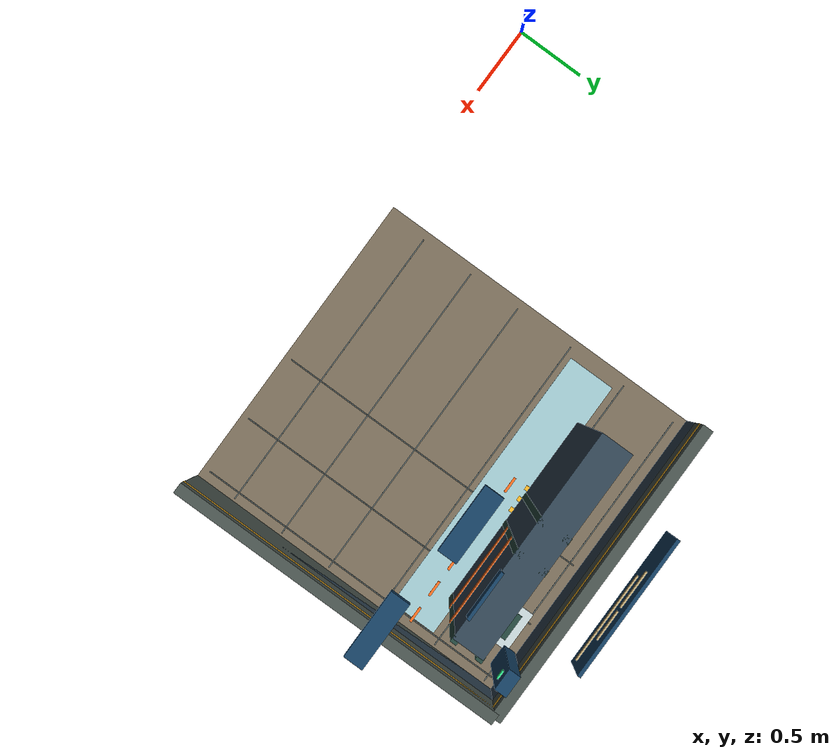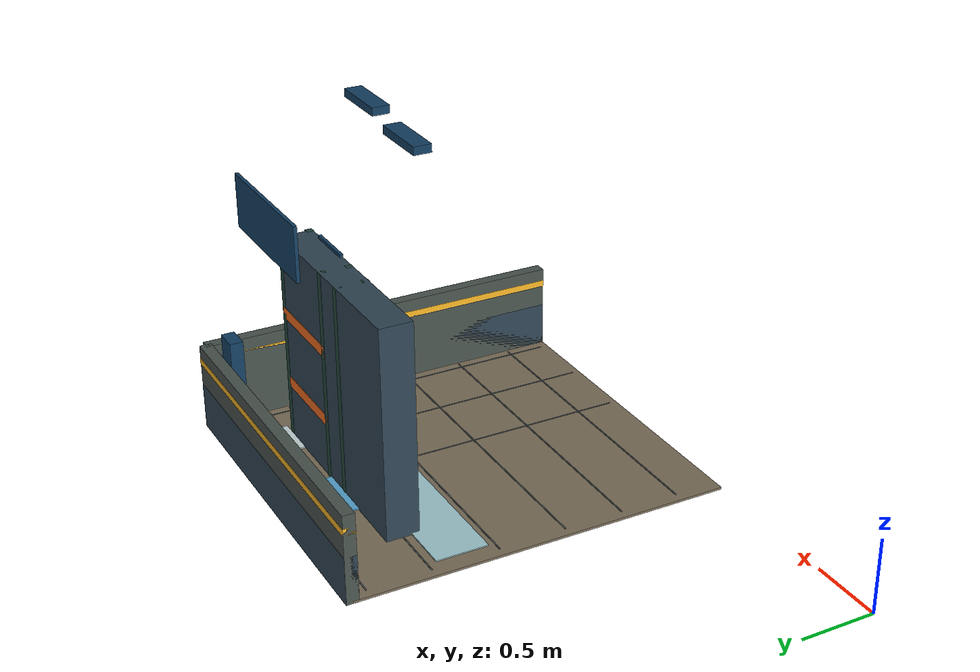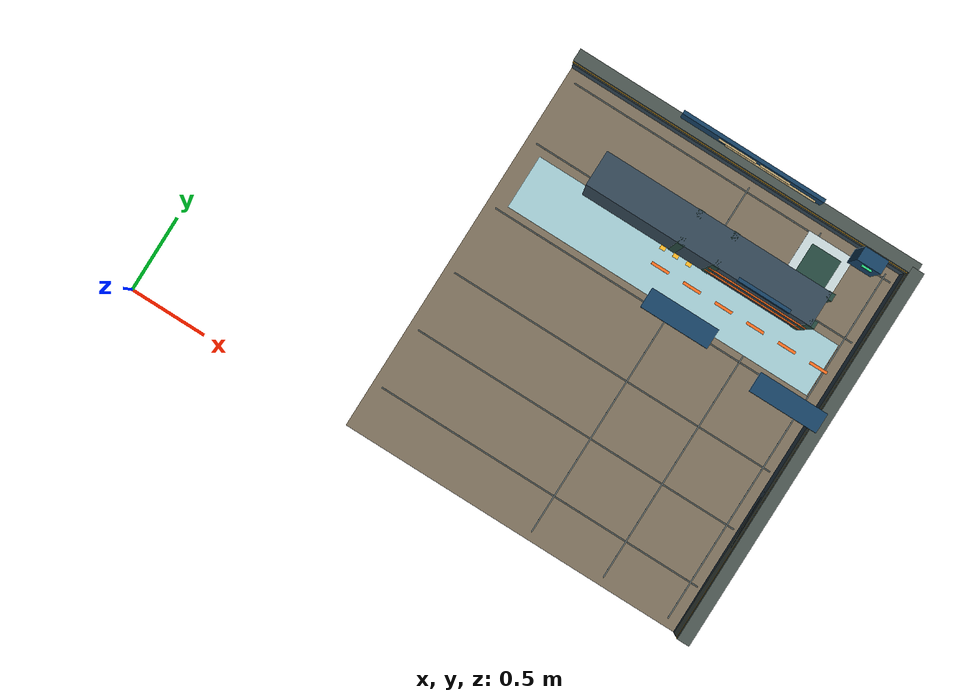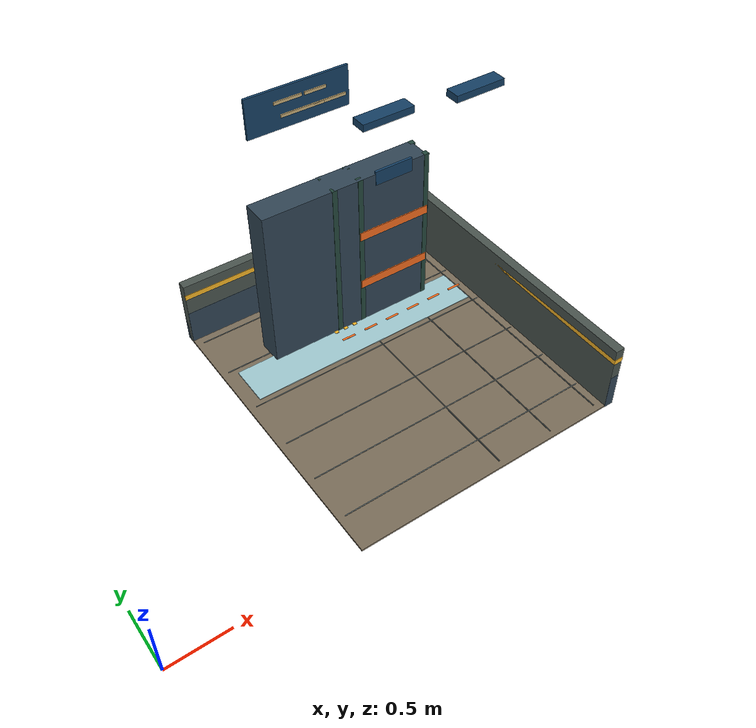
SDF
<sdf version="1.9">
 <world name="toktak_warehouse">
  <model name="ground_plane">
   <static>true</static>
   <link name="link">
    <collision name="collision">
     <geometry><plane><normal>0 0 1</normal><size>100 100</size></plane></geometry>
    </collision>
   </link>
  </model>
  <model name="001_main_floor">
   <static>true</static>
   <link name="link">
    <visual name="visual">
     <geometry><box><size>2.3200 2.5300 0.0160</size></box></geometry>
     <material>
      <ambient>0.48 0.43 0.35 1</ambient>
      <diffuse>0.48 0.43 0.35 1</diffuse>
      <specular>0.20 0.22 0.24 1</specular>
     </material>
    </visual>
   </link>
   <pose>2.6500 1.2650 0.0080 0.0000 0.0000 0.0000</pose>
  </model>
  <model name="005_floor_joint">
   <static>true</static>
   <link name="link">
    <visual name="visual">
     <geometry><box><size>0.0080 2.4000 0.0030</size></box></geometry>
     <material>
      <ambient>0.34 0.38 0.38 1</ambient>
      <diffuse>0.34 0.38 0.38 1</diffuse>
      <specular>0.20 0.22 0.24 1</specular>
     </material>
    </visual>
   </link>
   <pose>2.7500 1.2500 0.0180 0.0000 0.0000 0.0000</pose>
  </model>
  <model name="006_floor_joint">
   <static>true</static>
   <link name="link">
    <visual name="visual">
     <geometry><box><size>0.0080 2.4000 0.0030</size></box></geometry>
     <material>
      <ambient>0.34 0.38 0.38 1</ambient>
      <diffuse>0.34 0.38 0.38 1</diffuse>
      <specular>0.20 0.22 0.24 1</specular>
     </material>
    </visual>
   </link>
   <pose>3.2500 1.2500 0.0180 0.0000 0.0000 0.0000</pose>
  </model>
  <model name="007_floor_joint">
   <static>true</static>
   <link name="link">
    <visual name="visual">
     <geometry><box><size>0.0080 2.4000 0.0030</size></box></geometry>
     <material>
      <ambient>0.34 0.38 0.38 1</ambient>
      <diffuse>0.34 0.38 0.38 1</diffuse>
      <specular>0.20 0.22 0.24 1</specular>
     </material>
    </visual>
   </link>
   <pose>3.7000 1.2500 0.0180 0.0000 0.0000 0.0000</pose>
  </model>
  <model name="008_floor_joint">
   <static>true</static>
   <link name="link">
    <visual name="visual">
     <geometry><box><size>2.2000 0.0080 0.0030</size></box></geometry>
     <material>
      <ambient>0.34 0.38 0.38 1</ambient>
      <diffuse>0.34 0.38 0.38 1</diffuse>
      <specular>0.20 0.22 0.24 1</specular>
     </material>
    </visual>
   </link>
   <pose>2.6500 0.3000 0.0180 0.0000 0.0000 0.0000</pose>
  </model>
  <model name="009_floor_joint">
   <static>true</static>
   <link name="link">
    <visual name="visual">
     <geometry><box><size>2.2000 0.0080 0.0030</size></box></geometry>
     <material>
      <ambient>0.34 0.38 0.38 1</ambient>
      <diffuse>0.34 0.38 0.38 1</diffuse>
      <specular>0.20 0.22 0.24 1</specular>
     </material>
    </visual>
   </link>
   <pose>2.6500 0.7000 0.0180 0.0000 0.0000 0.0000</pose>
  </model>
  <model name="010_floor_joint">
   <static>true</static>
   <link name="link">
    <visual name="visual">
     <geometry><box><size>2.2000 0.0080 0.0030</size></box></geometry>
     <material>
      <ambient>0.34 0.38 0.38 1</ambient>
      <diffuse>0.34 0.38 0.38 1</diffuse>
      <specular>0.20 0.22 0.24 1</specular>
     </material>
    </visual>
   </link>
   <pose>2.6500 1.1000 0.0180 0.0000 0.0000 0.0000</pose>
  </model>
  <model name="011_floor_joint">
   <static>true</static>
   <link name="link">
    <visual name="visual">
     <geometry><box><size>2.2000 0.0080 0.0030</size></box></geometry>
     <material>
      <ambient>0.34 0.38 0.38 1</ambient>
      <diffuse>0.34 0.38 0.38 1</diffuse>
      <specular>0.20 0.22 0.24 1</specular>
     </material>
    </visual>
   </link>
   <pose>2.6500 1.5500 0.0180 0.0000 0.0000 0.0000</pose>
  </model>
  <model name="012_floor_joint">
   <static>true</static>
   <link name="link">
    <visual name="visual">
     <geometry><box><size>2.2000 0.0080 0.0030</size></box></geometry>
     <material>
      <ambient>0.34 0.38 0.38 1</ambient>
      <diffuse>0.34 0.38 0.38 1</diffuse>
      <specular>0.20 0.22 0.24 1</specular>
     </material>
    </visual>
   </link>
   <pose>2.6500 2.0000 0.0180 0.0000 0.0000 0.0000</pose>
  </model>
  <model name="013_floor_joint">
   <static>true</static>
   <link name="link">
    <visual name="visual">
     <geometry><box><size>2.2000 0.0080 0.0030</size></box></geometry>
     <material>
      <ambient>0.34 0.38 0.38 1</ambient>
      <diffuse>0.34 0.38 0.38 1</diffuse>
      <specular>0.20 0.22 0.24 1</specular>
     </material>
    </visual>
   </link>
   <pose>2.6500 2.4200 0.0180 0.0000 0.0000 0.0000</pose>
  </model>
  <model name="023_east_wall">
   <static>true</static>
   <link name="link">
    <collision name="collision"><geometry><box><size>0.0800 2.5300 0.6000</size></box></geometry></collision>
    <visual name="visual">
     <geometry><box><size>0.0800 2.5300 0.6000</size></box></geometry>
     <material>
      <ambient>0.29 0.33 0.31 1</ambient>
      <diffuse>0.29 0.33 0.31 1</diffuse>
      <specular>0.20 0.22 0.24 1</specular>
     </material>
    </visual>
   </link>
   <pose>3.8100 1.2650 0.3000 0.0000 0.0000 0.0000</pose>
  </model>
  <model name="024_east_plinth">
   <static>true</static>
   <link name="link">
    <visual name="visual">
     <geometry><box><size>0.0800 2.5320 0.3200</size></box></geometry>
     <material>
      <ambient>0.19 0.27 0.33 1</ambient>
      <diffuse>0.19 0.27 0.33 1</diffuse>
      <specular>0.20 0.22 0.24 1</specular>
     </material>
    </visual>
   </link>
   <pose>3.8100 1.2650 0.1600 0.0000 0.0000 0.0000</pose>
  </model>
  <model name="025_east_safety_band">
   <static>true</static>
   <link name="link">
    <visual name="visual">
     <geometry><box><size>0.0800 2.5340 0.0450</size></box></geometry>
     <material>
      <ambient>0.98 0.72 0.15 1</ambient>
      <diffuse>0.98 0.72 0.15 1</diffuse>
      <specular>0.20 0.22 0.24 1</specular>
     </material>
    </visual>
   </link>
   <pose>3.8100 1.2650 0.4900 0.0000 0.0000 0.0000</pose>
  </model>
  <model name="026_north_wall">
   <static>true</static>
   <link name="link">
    <collision name="collision"><geometry><box><size>2.3200 0.0800 0.6000</size></box></geometry></collision>
    <visual name="visual">
     <geometry><box><size>2.3200 0.0800 0.6000</size></box></geometry>
     <material>
      <ambient>0.29 0.33 0.31 1</ambient>
      <diffuse>0.29 0.33 0.31 1</diffuse>
      <specular>0.20 0.22 0.24 1</specular>
     </material>
    </visual>
   </link>
   <pose>2.6500 2.5300 0.3000 0.0000 0.0000 0.0000</pose>
  </model>
  <model name="027_north_plinth">
   <static>true</static>
   <link name="link">
    <visual name="visual">
     <geometry><box><size>2.3200 0.0820 0.3200</size></box></geometry>
     <material>
      <ambient>0.19 0.27 0.33 1</ambient>
      <diffuse>0.19 0.27 0.33 1</diffuse>
      <specular>0.20 0.22 0.24 1</specular>
     </material>
    </visual>
   </link>
   <pose>2.6500 2.5300 0.1600 0.0000 0.0000 0.0000</pose>
  </model>
  <model name="028_north_safety_band">
   <static>true</static>
   <link name="link">
    <visual name="visual">
     <geometry><box><size>2.3200 0.0840 0.0450</size></box></geometry>
     <material>
      <ambient>0.98 0.72 0.15 1</ambient>
      <diffuse>0.98 0.72 0.15 1</diffuse>
      <specular>0.20 0.22 0.24 1</specular>
     </material>
    </visual>
   </link>
   <pose>2.6500 2.5300 0.4900 0.0000 0.0000 0.0000</pose>
  </model>
  <model name="038_main_aisle">
   <static>true</static>
   <link name="link">
    <visual name="visual">
     <geometry><box><size>2.0800 0.3500 0.0080</size></box></geometry>
     <material>
      <ambient>0.63 0.79 0.82 1</ambient>
      <diffuse>0.63 0.79 0.82 1</diffuse>
      <specular>0.20 0.22 0.24 1</specular>
     </material>
    </visual>
   </link>
   <pose>2.6500 1.7700 0.0240 0.0000 0.0000 0.0000</pose>
  </model>
  <model name="043_lane_dash">
   <static>true</static>
   <link name="link">
    <visual name="visual">
     <geometry><box><size>0.1200 0.0180 0.0040</size></box></geometry>
     <material>
      <ambient>0.97 0.43 0.12 1</ambient>
      <diffuse>0.97 0.43 0.12 1</diffuse>
      <specular>0.20 0.22 0.24 1</specular>
     </material>
    </visual>
   </link>
   <pose>2.5600 1.7700 0.0300 0.0000 0.0000 0.0000</pose>
  </model>
  <model name="044_lane_dash">
   <static>true</static>
   <link name="link">
    <visual name="visual">
     <geometry><box><size>0.1200 0.0180 0.0040</size></box></geometry>
     <material>
      <ambient>0.97 0.43 0.12 1</ambient>
      <diffuse>0.97 0.43 0.12 1</diffuse>
      <specular>0.20 0.22 0.24 1</specular>
     </material>
    </visual>
   </link>
   <pose>2.7800 1.7700 0.0300 0.0000 0.0000 0.0000</pose>
  </model>
  <model name="045_lane_dash">
   <static>true</static>
   <link name="link">
    <visual name="visual">
     <geometry><box><size>0.1200 0.0180 0.0040</size></box></geometry>
     <material>
      <ambient>0.97 0.43 0.12 1</ambient>
      <diffuse>0.97 0.43 0.12 1</diffuse>
      <specular>0.20 0.22 0.24 1</specular>
     </material>
    </visual>
   </link>
   <pose>3.0000 1.7700 0.0300 0.0000 0.0000 0.0000</pose>
  </model>
  <model name="046_lane_dash">
   <static>true</static>
   <link name="link">
    <visual name="visual">
     <geometry><box><size>0.1200 0.0180 0.0040</size></box></geometry>
     <material>
      <ambient>0.97 0.43 0.12 1</ambient>
      <diffuse>0.97 0.43 0.12 1</diffuse>
      <specular>0.20 0.22 0.24 1</specular>
     </material>
    </visual>
   </link>
   <pose>3.2200 1.7700 0.0300 0.0000 0.0000 0.0000</pose>
  </model>
  <model name="047_lane_dash">
   <static>true</static>
   <link name="link">
    <visual name="visual">
     <geometry><box><size>0.1200 0.0180 0.0040</size></box></geometry>
     <material>
      <ambient>0.97 0.43 0.12 1</ambient>
      <diffuse>0.97 0.43 0.12 1</diffuse>
      <specular>0.20 0.22 0.24 1</specular>
     </material>
    </visual>
   </link>
   <pose>3.4400 1.7700 0.0300 0.0000 0.0000 0.0000</pose>
  </model>
  <model name="048_lane_dash">
   <static>true</static>
   <link name="link">
    <visual name="visual">
     <geometry><box><size>0.1200 0.0180 0.0040</size></box></geometry>
     <material>
      <ambient>0.97 0.43 0.12 1</ambient>
      <diffuse>0.97 0.43 0.12 1</diffuse>
      <specular>0.20 0.22 0.24 1</specular>
     </material>
    </visual>
   </link>
   <pose>3.6600 1.7700 0.0300 0.0000 0.0000 0.0000</pose>
  </model>
  <model name="060_L2_pad">
   <static>true</static>
   <link name="link">
    <visual name="visual">
     <geometry><box><size>0.4200 0.2700 0.0100</size></box></geometry>
     <material>
      <ambient>0.34 0.65 0.82 1</ambient>
      <diffuse>0.34 0.65 0.82 1</diffuse>
      <specular>0.20 0.22 0.24 1</specular>
     </material>
    </visual>
   </link>
   <pose>2.5500 2.0250 0.0260 0.0000 0.0000 0.0000</pose>
  </model>
  <model name="062_L2_approach_mark">
   <static>true</static>
   <link name="link">
    <visual name="visual">
     <geometry><box><size>0.0350 0.0350 0.0040</size></box></geometry>
     <material>
      <ambient>0.98 0.72 0.15 1</ambient>
      <diffuse>0.98 0.72 0.15 1</diffuse>
      <specular>0.20 0.22 0.24 1</specular>
     </material>
    </visual>
   </link>
   <pose>2.5100 1.8820 0.0330 0.0000 0.0000 0.0000</pose>
  </model>
  <model name="063_L2_approach_mark">
   <static>true</static>
   <link name="link">
    <visual name="visual">
     <geometry><box><size>0.0350 0.0350 0.0040</size></box></geometry>
     <material>
      <ambient>0.98 0.72 0.15 1</ambient>
      <diffuse>0.98 0.72 0.15 1</diffuse>
      <specular>0.20 0.22 0.24 1</specular>
     </material>
    </visual>
   </link>
   <pose>2.6000 1.8820 0.0330 0.0000 0.0000 0.0000</pose>
  </model>
  <model name="064_L2_approach_mark">
   <static>true</static>
   <link name="link">
    <visual name="visual">
     <geometry><box><size>0.0350 0.0350 0.0040</size></box></geometry>
     <material>
      <ambient>0.98 0.72 0.15 1</ambient>
      <diffuse>0.98 0.72 0.15 1</diffuse>
      <specular>0.20 0.22 0.24 1</specular>
     </material>
    </visual>
   </link>
   <pose>2.6900 1.8820 0.0330 0.0000 0.0000 0.0000</pose>
  </model>
  <model name="069_rack_collision_hull">
   <static>true</static>
   <link name="link">
    <collision name="collision"><geometry><box><size>1.3300 0.1900 1.8800</size></box></geometry></collision>
    <visual name="visual">
     <geometry><box><size>1.4700 0.2200 1.4400</size></box></geometry>
     <material>
      <ambient>0.19 0.27 0.33 1</ambient>
      <diffuse>0.19 0.27 0.33 1</diffuse>
      <specular>0.20 0.22 0.24 1</specular>
     </material>
    </visual>
   </link>
   <pose>2.6750 2.0000 0.7200 0.0000 0.0000 0.0000</pose>
  </model>
  <model name="072_rack_A_right_front_upright">
   <static>true</static>
   <link name="link">
    <visual name="visual">
     <geometry><box><size>0.0450 0.0450 1.4400</size></box></geometry>
     <material>
      <ambient>0.14 0.28 0.24 1</ambient>
      <diffuse>0.14 0.28 0.24 1</diffuse>
      <specular>0.20 0.22 0.24 1</specular>
     </material>
    </visual>
   </link>
   <pose>2.5600 1.9100 0.7200 0.0000 0.0000 0.0000</pose>
  </model>
  <model name="073_rack_A_right_back_upright">
   <static>true</static>
   <link name="link">
    <visual name="visual">
     <geometry><box><size>0.0450 0.0450 1.4400</size></box></geometry>
     <material>
      <ambient>0.14 0.28 0.24 1</ambient>
      <diffuse>0.14 0.28 0.24 1</diffuse>
      <specular>0.20 0.22 0.24 1</specular>
     </material>
    </visual>
   </link>
   <pose>2.5600 2.0900 0.7200 0.0000 0.0000 0.0000</pose>
  </model>
  <model name="091_carton_A_2_2">
   <static>true</static>
   <link name="link">
    <visual name="visual">
     <geometry><box><size>0.1700 0.1500 0.2200</size></box></geometry>
     <material>
      <ambient>0.88 0.24 0.16 1</ambient>
      <diffuse>0.88 0.24 0.16 1</diffuse>
      <specular>0.20 0.22 0.24 1</specular>
     </material>
    </visual>
   </link>
   <pose>2.4500 2.0000 1.1500 0.0000 0.0000 0.0000</pose>
  </model>
  <model name="096_rack_B_left_front_upright">
   <static>true</static>
   <link name="link">
    <visual name="visual">
     <geometry><box><size>0.0450 0.0450 1.4400</size></box></geometry>
     <material>
      <ambient>0.14 0.28 0.24 1</ambient>
      <diffuse>0.14 0.28 0.24 1</diffuse>
      <specular>0.20 0.22 0.24 1</specular>
     </material>
    </visual>
   </link>
   <pose>2.7900 1.9100 0.7200 0.0000 0.0000 0.0000</pose>
  </model>
  <model name="097_rack_B_left_back_upright">
   <static>true</static>
   <link name="link">
    <visual name="visual">
     <geometry><box><size>0.0450 0.0450 1.4400</size></box></geometry>
     <material>
      <ambient>0.14 0.28 0.24 1</ambient>
      <diffuse>0.14 0.28 0.24 1</diffuse>
      <specular>0.20 0.22 0.24 1</specular>
     </material>
    </visual>
   </link>
   <pose>2.7900 2.0900 0.7200 0.0000 0.0000 0.0000</pose>
  </model>
  <model name="098_rack_B_right_front_upright">
   <static>true</static>
   <link name="link">
    <visual name="visual">
     <geometry><box><size>0.0450 0.0450 1.4400</size></box></geometry>
     <material>
      <ambient>0.14 0.28 0.24 1</ambient>
      <diffuse>0.14 0.28 0.24 1</diffuse>
      <specular>0.20 0.22 0.24 1</specular>
     </material>
    </visual>
   </link>
   <pose>3.4100 1.9100 0.7200 0.0000 0.0000 0.0000</pose>
  </model>
  <model name="099_rack_B_right_back_upright">
   <static>true</static>
   <link name="link">
    <visual name="visual">
     <geometry><box><size>0.0450 0.0450 1.4400</size></box></geometry>
     <material>
      <ambient>0.14 0.28 0.24 1</ambient>
      <diffuse>0.14 0.28 0.24 1</diffuse>
      <specular>0.20 0.22 0.24 1</specular>
     </material>
    </visual>
   </link>
   <pose>3.4100 2.0900 0.7200 0.0000 0.0000 0.0000</pose>
  </model>
  <model name="100_rack_B_deck_1">
   <static>true</static>
   <link name="link">
    <visual name="visual">
     <geometry><box><size>0.6200 0.2050 0.0450</size></box></geometry>
     <material>
      <ambient>0.43 0.41 0.35 1</ambient>
      <diffuse>0.43 0.41 0.35 1</diffuse>
      <specular>0.20 0.22 0.24 1</specular>
     </material>
    </visual>
   </link>
   <pose>3.1000 2.0000 0.4200 0.0000 0.0000 0.0000</pose>
  </model>
  <model name="101_rack_B_front_beam_1">
   <static>true</static>
   <link name="link">
    <visual name="visual">
     <geometry><box><size>0.6500 0.0450 0.0750</size></box></geometry>
     <material>
      <ambient>0.97 0.43 0.12 1</ambient>
      <diffuse>0.97 0.43 0.12 1</diffuse>
      <specular>0.20 0.22 0.24 1</specular>
     </material>
    </visual>
   </link>
   <pose>3.1000 1.9050 0.4200 0.0000 0.0000 0.0000</pose>
  </model>
  <model name="102_rack_B_back_beam_1">
   <static>true</static>
   <link name="link">
    <visual name="visual">
     <geometry><box><size>0.6500 0.0350 0.0750</size></box></geometry>
     <material>
      <ambient>0.97 0.43 0.12 1</ambient>
      <diffuse>0.97 0.43 0.12 1</diffuse>
      <specular>0.20 0.22 0.24 1</specular>
     </material>
    </visual>
   </link>
   <pose>3.1000 2.0950 0.4200 0.0000 0.0000 0.0000</pose>
  </model>
  <model name="103_rack_B_deck_2">
   <static>true</static>
   <link name="link">
    <visual name="visual">
     <geometry><box><size>0.6200 0.2050 0.0450</size></box></geometry>
     <material>
      <ambient>0.43 0.41 0.35 1</ambient>
      <diffuse>0.43 0.41 0.35 1</diffuse>
      <specular>0.20 0.22 0.24 1</specular>
     </material>
    </visual>
   </link>
   <pose>3.1000 2.0000 0.9100 0.0000 0.0000 0.0000</pose>
  </model>
  <model name="104_rack_B_front_beam_2">
   <static>true</static>
   <link name="link">
    <visual name="visual">
     <geometry><box><size>0.6500 0.0450 0.0750</size></box></geometry>
     <material>
      <ambient>0.97 0.43 0.12 1</ambient>
      <diffuse>0.97 0.43 0.12 1</diffuse>
      <specular>0.20 0.22 0.24 1</specular>
     </material>
    </visual>
   </link>
   <pose>3.1000 1.9050 0.9100 0.0000 0.0000 0.0000</pose>
  </model>
  <model name="105_rack_B_back_beam_2">
   <static>true</static>
   <link name="link">
    <visual name="visual">
     <geometry><box><size>0.6500 0.0350 0.0750</size></box></geometry>
     <material>
      <ambient>0.97 0.43 0.12 1</ambient>
      <diffuse>0.97 0.43 0.12 1</diffuse>
      <specular>0.20 0.22 0.24 1</specular>
     </material>
    </visual>
   </link>
   <pose>3.1000 2.0950 0.9100 0.0000 0.0000 0.0000</pose>
  </model>
  <model name="112_carton_B_1_0">
   <static>true</static>
   <link name="link">
    <visual name="visual">
     <geometry><box><size>0.1700 0.1500 0.1700</size></box></geometry>
     <material>
      <ambient>0.12 0.52 0.42 1</ambient>
      <diffuse>0.12 0.52 0.42 1</diffuse>
      <specular>0.20 0.22 0.24 1</specular>
     </material>
    </visual>
   </link>
   <pose>2.9000 2.0000 0.6350 0.0000 0.0000 0.0000</pose>
  </model>
  <model name="113_carton_B_1_1">
   <static>true</static>
   <link name="link">
    <visual name="visual">
     <geometry><box><size>0.1700 0.1500 0.2200</size></box></geometry>
     <material>
      <ambient>0.38 0.53 0.69 1</ambient>
      <diffuse>0.38 0.53 0.69 1</diffuse>
      <specular>0.20 0.22 0.24 1</specular>
     </material>
    </visual>
   </link>
   <pose>3.1000 2.0000 0.6600 0.0000 0.0000 0.0000</pose>
  </model>
  <model name="114_carton_B_1_2">
   <static>true</static>
   <link name="link">
    <visual name="visual">
     <geometry><box><size>0.1700 0.1500 0.1700</size></box></geometry>
     <material>
      <ambient>0.88 0.24 0.16 1</ambient>
      <diffuse>0.88 0.24 0.16 1</diffuse>
      <specular>0.20 0.22 0.24 1</specular>
     </material>
    </visual>
   </link>
   <pose>3.3000 2.0000 0.6350 0.0000 0.0000 0.0000</pose>
  </model>
  <model name="115_carton_B_2_0">
   <static>true</static>
   <link name="link">
    <visual name="visual">
     <geometry><box><size>0.1700 0.1500 0.2200</size></box></geometry>
     <material>
      <ambient>0.38 0.53 0.69 1</ambient>
      <diffuse>0.38 0.53 0.69 1</diffuse>
      <specular>0.20 0.22 0.24 1</specular>
     </material>
    </visual>
   </link>
   <pose>2.9000 2.0000 1.1500 0.0000 0.0000 0.0000</pose>
  </model>
  <model name="116_carton_B_2_1">
   <static>true</static>
   <link name="link">
    <visual name="visual">
     <geometry><box><size>0.1700 0.1500 0.1700</size></box></geometry>
     <material>
      <ambient>0.88 0.24 0.16 1</ambient>
      <diffuse>0.88 0.24 0.16 1</diffuse>
      <specular>0.20 0.22 0.24 1</specular>
     </material>
    </visual>
   </link>
   <pose>3.1000 2.0000 1.1250 0.0000 0.0000 0.0000</pose>
  </model>
  <model name="117_carton_B_2_2">
   <static>true</static>
   <link name="link">
    <visual name="visual">
     <geometry><box><size>0.1700 0.1500 0.2200</size></box></geometry>
     <material>
      <ambient>0.96 0.66 0.12 1</ambient>
      <diffuse>0.96 0.66 0.12 1</diffuse>
      <specular>0.20 0.22 0.24 1</specular>
     </material>
    </visual>
   </link>
   <pose>3.3000 2.0000 1.1500 0.0000 0.0000 0.0000</pose>
  </model>
  <model name="121_rack_B_header">
   <static>true</static>
   <link name="link">
    <visual name="visual">
     <geometry><box><size>0.3400 0.0220 0.1200</size></box></geometry>
     <material>
      <ambient>0.08 0.25 0.39 1</ambient>
      <diffuse>0.08 0.25 0.39 1</diffuse>
      <specular>0.20 0.22 0.24 1</specular>
     </material>
    </visual>
   </link>
   <pose>3.1000 1.8990 1.4000 0.0000 0.0000 0.0000</pose>
  </model>
  <model name="122_P0_pad">
   <static>true</static>
   <link name="link">
    <visual name="visual">
     <geometry><box><size>0.3100 0.3100 0.0100</size></box></geometry>
     <material>
      <ambient>0.78 0.84 0.85 1</ambient>
      <diffuse>0.78 0.84 0.85 1</diffuse>
      <specular>0.20 0.22 0.24 1</specular>
     </material>
    </visual>
   </link>
   <pose>3.3400 2.2700 0.0260 0.0000 0.0000 0.0000</pose>
  </model>
  <model name="123_P0_pad_center">
   <static>true</static>
   <link name="link">
    <visual name="visual">
     <geometry><box><size>0.2000 0.2000 0.0060</size></box></geometry>
     <material>
      <ambient>0.14 0.28 0.24 1</ambient>
      <diffuse>0.14 0.28 0.24 1</diffuse>
      <specular>0.20 0.22 0.24 1</specular>
     </material>
    </visual>
   </link>
   <pose>3.3400 2.2700 0.0330 0.0000 0.0000 0.0000</pose>
  </model>
  <model name="124_charger_body">
   <static>true</static>
   <link name="link">
    <visual name="visual">
     <geometry><box><size>0.1600 0.0900 0.7200</size></box></geometry>
     <material>
      <ambient>0.08 0.25 0.39 1</ambient>
      <diffuse>0.08 0.25 0.39 1</diffuse>
      <specular>0.20 0.22 0.24 1</specular>
     </material>
    </visual>
   </link>
   <pose>3.5500 2.4300 0.3800 0.0000 0.0000 0.0000</pose>
  </model>
  <model name="125_charger_status_light">
   <static>true</static>
   <link name="link">
    <visual name="visual">
     <geometry><box><size>0.0650 0.0120 0.0450</size></box></geometry>
     <material>
      <ambient>0.18 0.92 0.55 1</ambient>
      <diffuse>0.18 0.92 0.55 1</diffuse>
      <specular>0.20 0.22 0.24 1</specular>
     </material>
    </visual>
   </link>
   <pose>3.5500 2.3780 0.6200 0.0000 0.0000 0.0000</pose>
  </model>
  <model name="126_warehouse_sign_back">
   <static>true</static>
   <link name="link">
    <visual name="visual">
     <geometry><box><size>0.9000 0.0220 0.3400</size></box></geometry>
     <material>
      <ambient>0.08 0.25 0.39 1</ambient>
      <diffuse>0.08 0.25 0.39 1</diffuse>
      <specular>0.20 0.22 0.24 1</specular>
     </material>
    </visual>
   </link>
   <pose>2.6300 2.4740 1.8800 0.0000 0.0000 0.0000</pose>
  </model>
  <model name="129_sign_graphic">
   <static>true</static>
   <link name="link">
    <visual name="visual">
     <geometry><box><size>0.2400 0.0120 0.0250</size></box></geometry>
     <material>
      <ambient>0.78 0.68 0.47 1</ambient>
      <diffuse>0.78 0.68 0.47 1</diffuse>
      <specular>0.20 0.22 0.24 1</specular>
     </material>
    </visual>
   </link>
   <pose>2.5400 2.4590 1.9400 0.0000 0.0000 0.0000</pose>
  </model>
  <model name="130_sign_graphic">
   <static>true</static>
   <link name="link">
    <visual name="visual">
     <geometry><box><size>0.3800 0.0120 0.0250</size></box></geometry>
     <material>
      <ambient>0.78 0.68 0.47 1</ambient>
      <diffuse>0.78 0.68 0.47 1</diffuse>
      <specular>0.20 0.22 0.24 1</specular>
     </material>
    </visual>
   </link>
   <pose>2.6600 2.4590 1.8200 0.0000 0.0000 0.0000</pose>
  </model>
  <model name="131_sign_graphic">
   <static>true</static>
   <link name="link">
    <visual name="visual">
     <geometry><box><size>0.1900 0.0120 0.0250</size></box></geometry>
     <material>
      <ambient>0.78 0.68 0.47 1</ambient>
      <diffuse>0.78 0.68 0.47 1</diffuse>
      <specular>0.20 0.22 0.24 1</specular>
     </material>
    </visual>
   </link>
   <pose>2.7800 2.4590 1.9400 0.0000 0.0000 0.0000</pose>
  </model>
  <model name="132_sign_graphic">
   <static>true</static>
   <link name="link">
    <visual name="visual">
     <geometry><box><size>0.2900 0.0120 0.0250</size></box></geometry>
     <material>
      <ambient>0.78 0.68 0.47 1</ambient>
      <diffuse>0.78 0.68 0.47 1</diffuse>
      <specular>0.20 0.22 0.24 1</specular>
     </material>
    </visual>
   </link>
   <pose>2.9000 2.4590 1.8200 0.0000 0.0000 0.0000</pose>
  </model>
  <model name="135_light_2_housing">
   <static>true</static>
   <link name="link">
    <visual name="visual">
     <geometry><box><size>0.4200 0.1200 0.0550</size></box></geometry>
     <material>
      <ambient>0.08 0.25 0.39 1</ambient>
      <diffuse>0.08 0.25 0.39 1</diffuse>
      <specular>0.20 0.22 0.24 1</specular>
     </material>
    </visual>
   </link>
   <pose>2.7500 1.5200 2.2000 0.0000 0.0000 0.0000</pose>
  </model>
  <model name="136_light_2_diffuser">
   <static>true</static>
   <link name="link">
    <visual name="visual">
     <geometry><box><size>0.3600 0.0900 0.0120</size></box></geometry>
     <material>
      <ambient>0.95 0.96 0.86 1</ambient>
      <diffuse>0.95 0.96 0.86 1</diffuse>
      <specular>0.20 0.22 0.24 1</specular>
     </material>
    </visual>
   </link>
   <pose>2.7500 1.5200 2.1660 0.0000 0.0000 0.0000</pose>
  </model>
  <model name="139_light_4_housing">
   <static>true</static>
   <link name="link">
    <visual name="visual">
     <geometry><box><size>0.4200 0.1200 0.0550</size></box></geometry>
     <material>
      <ambient>0.08 0.25 0.39 1</ambient>
      <diffuse>0.08 0.25 0.39 1</diffuse>
      <specular>0.20 0.22 0.24 1</specular>
     </material>
    </visual>
   </link>
   <pose>3.4800 1.4500 2.2000 0.0000 0.0000 0.0000</pose>
  </model>
  <model name="140_light_4_diffuser">
   <static>true</static>
   <link name="link">
    <visual name="visual">
     <geometry><box><size>0.3600 0.0900 0.0120</size></box></geometry>
     <material>
      <ambient>0.95 0.96 0.86 1</ambient>
      <diffuse>0.95 0.96 0.86 1</diffuse>
      <specular>0.20 0.22 0.24 1</specular>
     </material>
    </visual>
   </link>
   <pose>3.4800 1.4500 2.1660 0.0000 0.0000 0.0000</pose>
  </model>
 </world>
</sdf>
